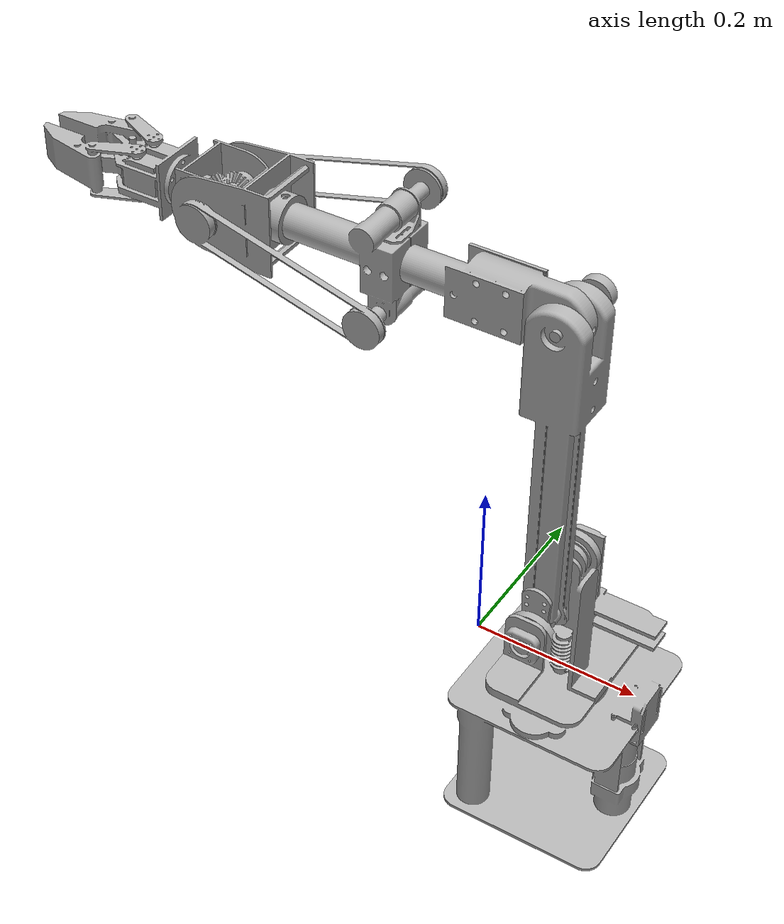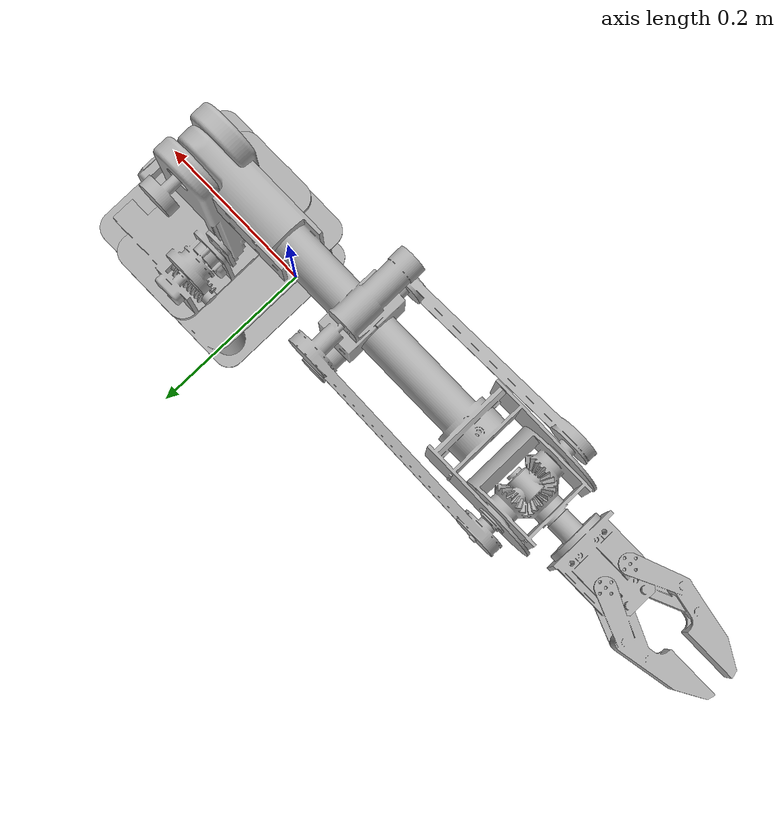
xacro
<?xml version="1.0" ?>
<robot name="Complete" xmlns:xacro="http://www.ros.org/wiki/xacro">

<xacro:include filename="$(find complete_description)/urdf/materials.xacro" />
<xacro:include filename="$(find complete_description)/urdf/Complete.trans" />
<xacro:include filename="$(find complete_description)/urdf/Complete.gazebo" />
<link name="base_link">
  <inertial>
    <origin xyz="0.09863893458708223 0.020666886405713944 -0.12091726153628585" rpy="0 0 0"/>
    <mass value="9.821195383733215"/>
    <inertia ixx="0.120" iyy="0.120" izz="0.120" ixy="0.0" iyz="0.0" ixz="0.0"/>
  </inertial>
  <visual>
    <origin xyz="0 0 0" rpy="0 0 0"/>
    <geometry>
      <mesh filename="package://complete_description/meshes/base_link.stl" scale="0.001 0.001 0.001"/>
    </geometry>
    <material name="silver"/>
  </visual>
  <collision>
    <origin xyz="0 0 0" rpy="0 0 0"/>
    <geometry>
      <mesh filename="package://complete_description/meshes/base_link.stl" scale="0.001 0.001 0.001"/>
    </geometry>
  </collision>
</link>

<link name="link_2_1">
  <inertial>
    <origin xyz="0.00026728213092525044 0.004264249489629316 0.26780401106615637" rpy="0 0 0"/>
    <mass value="5.538509917856652"/>
    <inertia ixx="0.118445" iyy="0.116988" izz="0.004234" ixy="0.0" iyz="0.0" ixz="0.0"/>
  </inertial>
  <visual>
    <origin xyz="-0.072572 -0.0145 -0.033623" rpy="0 0 0"/>
    <geometry>
      <mesh filename="package://complete_description/meshes/link_2_1.stl" scale="0.001 0.001 0.001"/>
    </geometry>
    <material name="silver"/>
  </visual>
  <collision>
    <origin xyz="-0.072572 -0.0145 -0.033623" rpy="0 0 0"/>
    <geometry>
      <mesh filename="package://complete_description/meshes/link_2_1.stl" scale="0.001 0.001 0.001"/>
    </geometry>
  </collision>
</link>

<link name="link_3_1">
  <inertial>
    <origin xyz="-0.19645793459800576 0.001527980141284118 -6.124109579352943e-05" rpy="0 0 0"/>
    <mass value="6.743170891881594"/>
    <inertia ixx="0.013006" iyy="0.122294" izz="0.122187" ixy="0.0" iyz="0.0" ixz="0.0"/>
  </inertial>
  <visual>
    <origin xyz="-0.073 -0.02 -0.45" rpy="0 0 0"/>
    <geometry>
      <mesh filename="package://complete_description/meshes/link_3_1.stl" scale="0.001 0.001 0.001"/>
    </geometry>
    <material name="silver"/>
  </visual>
  <collision>
    <origin xyz="-0.073 -0.02 -0.45" rpy="0 0 0"/>
    <geometry>
      <mesh filename="package://complete_description/meshes/link_3_1.stl" scale="0.001 0.001 0.001"/>
    </geometry>
  </collision>
</link>

<link name="link_4_1">
  <inertial>
    <origin xyz="0.001077726078575869 9.668432496758722e-05 4.2243340570014e-07" rpy="0 0 0"/>
    <mass value="1.1754865001833124"/>
    <inertia ixx="0.000976" iyy="0.000989" izz="0.00137" ixy="0.0" iyz="0.0" ixz="-0.0"/>
  </inertial>
  <visual>
    <origin xyz="0.346 -0.0201 -0.44975" rpy="0 0 0"/>
    <geometry>
      <mesh filename="package://complete_description/meshes/link_4_1.stl" scale="0.001 0.001 0.001"/>
    </geometry>
    <material name="silver"/>
  </visual>
  <collision>
    <origin xyz="0.346 -0.0201 -0.44975" rpy="0 0 0"/>
    <geometry>
      <mesh filename="package://complete_description/meshes/link_4_1.stl" scale="0.001 0.001 0.001"/>
    </geometry>
  </collision>
</link>

<link name="link_5_1">
  <inertial>
    <origin xyz="-0.05106748050361576 -2.592030692711439e-06 -0.0026113727807307585" rpy="0 0 0"/>
    <mass value="1.1932340186191568"/>
    <inertia ixx="0.000565" iyy="0.00113" izz="0.00119" ixy="0.0" iyz="0.0" ixz="0.0"/>
  </inertial>
  <visual>
    <origin xyz="0.385 -0.0201 -0.44975" rpy="0 0 0"/>
    <geometry>
      <mesh filename="package://complete_description/meshes/link_5_1.stl" scale="0.001 0.001 0.001"/>
    </geometry>
    <material name="silver"/>
  </visual>
  <collision>
    <origin xyz="0.385 -0.0201 -0.44975" rpy="0 0 0"/>
    <geometry>
      <mesh filename="package://complete_description/meshes/link_5_1.stl" scale="0.001 0.001 0.001"/>
    </geometry>
  </collision>
</link>

<link name="link_6_1">
  <inertial>
    <origin xyz="-0.07537993337072041 -0.014999999396437202 -0.025514139400552527" rpy="0 0 0"/>
    <mass value="1.3142666954310849"/>
    <inertia ixx="0.001178" iyy="0.001552" izz="0.002205" ixy="0.0" iyz="0.0" ixz="0.0"/>
  </inertial>
  <visual>
    <origin xyz="0.456668 -0.0351 -0.475545" rpy="0 0 0"/>
    <geometry>
      <mesh filename="package://complete_description/meshes/link_6_1.stl" scale="0.001 0.001 0.001"/>
    </geometry>
    <material name="silver"/>
  </visual>
  <collision>
    <origin xyz="0.456668 -0.0351 -0.475545" rpy="0 0 0"/>
    <geometry>
      <mesh filename="package://complete_description/meshes/link_6_1.stl" scale="0.001 0.001 0.001"/>
    </geometry>
  </collision>
</link>

<link name="link_1_1">
  <inertial>
    <origin xyz="0.001915450206829053 0.01196615198271284 0.03990414852039872" rpy="0 0 0"/>
    <mass value="8.48630023360663"/>
    <inertia ixx="0.085" iyy="0.075" izz="0.042" ixy="0.0" iyz="0.0" ixz="0.0"/>
  </inertial>
  <visual>
    <origin xyz="-0.1075 -0.02 0.031" rpy="0 0 0"/>
    <geometry>
      <mesh filename="package://complete_description/meshes/link_1_1.stl" scale="0.001 0.001 0.001"/>
    </geometry>
    <material name="silver"/>
  </visual>
  <collision>
    <origin xyz="-0.1075 -0.02 0.031" rpy="0 0 0"/>
    <geometry>
      <mesh filename="package://complete_description/meshes/link_1_1.stl" scale="0.001 0.001 0.001"/>
    </geometry>
  </collision>
</link>

<joint name="revolute_5" type="continuous">
  <origin xyz="-0.034928 -0.0055 0.064623" rpy="0 0 0"/>
  <parent link="link_1_1"/>
  <child link="link_2_1"/>
  <axis xyz="0.0 -1.0 0.0"/>
  <dynamics damping="1.5" friction="0.25"/>
</joint>

<joint name="revolute_6" type="continuous">
  <origin xyz="0.000428 0.0055 0.416377" rpy="0 0 0"/>
  <parent link="link_2_1"/>
  <child link="link_3_1"/>
  <axis xyz="0.0 1.0 -0.0"/>
  <dynamics damping="1.5" friction="0.25"/>
</joint>

<joint name="revolute_7" type="continuous">
  <origin xyz="-0.419 0.0001 -0.00025" rpy="0 0 0"/>
  <parent link="link_3_1"/>
  <child link="link_4_1"/>
  <axis xyz="-0.0 1.0 -0.0"/>
  <dynamics damping="1.2" friction="0.2"/>
</joint>

<joint name="revolute_8" type="continuous">
  <origin xyz="-0.039 0.0 0.0" rpy="0 0 0"/>
  <parent link="link_4_1"/>
  <child link="link_5_1"/>
  <axis xyz="-1.0 -0.0 0.0"/>
  <dynamics damping="1.0" friction="0.15"/>
</joint>

<joint name="revolute_12" type="continuous">
  <origin xyz="-0.071668 0.015 0.025795" rpy="0 0 0"/>
  <parent link="link_5_1"/>
  <child link="link_6_1"/>
  <axis xyz="0.0 0.0 1.0"/>
  <dynamics damping="0.8" friction="0.1"/>
</joint>

<joint name="revolute_13" type="continuous">
  <origin xyz="0.1075 0.02 -0.031" rpy="0 0 0"/>
  <parent link="base_link"/>
  <child link="link_1_1"/>
  <axis xyz="0.0 0.0 -1.0"/>
  <dynamics damping="1.2" friction="0.2"/>
</joint>

</robot>

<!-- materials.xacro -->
<robot name="Complete" xmlns:xacro="http://www.ros.org/wiki/xacro" >

<material name="silver">
  <color rgba="0.700 0.700 0.700 1.000"/>
</material>

</robot>

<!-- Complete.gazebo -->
<robot name="Complete" xmlns:xacro="http://www.ros.org/wiki/xacro" >

<xacro:property name="body_color" value="Gazebo/Silver" />

<gazebo>
  <plugin filename="libignition-gazebo-joint-state-publisher-system.so" name="ignition::gazebo::systems::JointStatePublisher">
    <joint_name>revolute_13</joint_name>
    <joint_name>revolute_5</joint_name>
    <joint_name>revolute_6</joint_name>
    <joint_name>revolute_7</joint_name>
    <joint_name>revolute_8</joint_name>
    <joint_name>revolute_12</joint_name>
  </plugin>

  <plugin filename="libignition-gazebo-joint-position-controller-system.so" name="ignition::gazebo::systems::JointPositionController">
    <joint_name>revolute_13</joint_name>
    <topic>/revolute_13_cmd</topic>
  </plugin>

  <plugin filename="libignition-gazebo-joint-position-controller-system.so" name="ignition::gazebo::systems::JointPositionController">
    <joint_name>revolute_5</joint_name>
    <topic>/revolute_5_cmd</topic>
  </plugin>

  <plugin filename="libignition-gazebo-joint-position-controller-system.so" name="ignition::gazebo::systems::JointPositionController">
    <joint_name>revolute_6</joint_name>
    <topic>/revolute_6_cmd</topic>
  </plugin>

  <plugin filename="libignition-gazebo-joint-position-controller-system.so" name="ignition::gazebo::systems::JointPositionController">
    <joint_name>revolute_7</joint_name>
    <topic>/revolute_7_cmd</topic>
  </plugin>

  <plugin filename="libignition-gazebo-joint-position-controller-system.so" name="ignition::gazebo::systems::JointPositionController">
    <joint_name>revolute_8</joint_name>
    <topic>/revolute_8_cmd</topic>
  </plugin>

  <plugin filename="libignition-gazebo-joint-position-controller-system.so" name="ignition::gazebo::systems::JointPositionController">
    <joint_name>revolute_12</joint_name>
    <topic>/revolute_12_cmd</topic>
  </plugin>
</gazebo>
<gazebo reference="base_link">
  <material>${body_color}</material>
  <mu1>0.2</mu1>
  <mu2>0.2</mu2>
  <selfCollide>false</selfCollide>
  <gravity>true</gravity>
</gazebo>

<gazebo reference="link_2_1">
  <material>${body_color}</material>
  <mu1>0.2</mu1>
  <mu2>0.2</mu2>
  <selfCollide>false</selfCollide>
</gazebo>

<gazebo reference="link_3_1">
  <material>${body_color}</material>
  <mu1>0.2</mu1>
  <mu2>0.2</mu2>
  <selfCollide>false</selfCollide>
</gazebo>

<gazebo reference="link_4_1">
  <material>${body_color}</material>
  <mu1>0.2</mu1>
  <mu2>0.2</mu2>
  <selfCollide>false</selfCollide>
</gazebo>

<gazebo reference="link_5_1">
  <material>${body_color}</material>
  <mu1>0.2</mu1>
  <mu2>0.2</mu2>
  <selfCollide>false</selfCollide>
</gazebo>

<gazebo reference="link_6_1">
  <material>${body_color}</material>
  <mu1>0.2</mu1>
  <mu2>0.2</mu2>
  <selfCollide>false</selfCollide>
</gazebo>

<gazebo reference="link_1_1">
  <material>${body_color}</material>
  <mu1>0.2</mu1>
  <mu2>0.2</mu2>
  <selfCollide>false</selfCollide>
</gazebo>

</robot>
